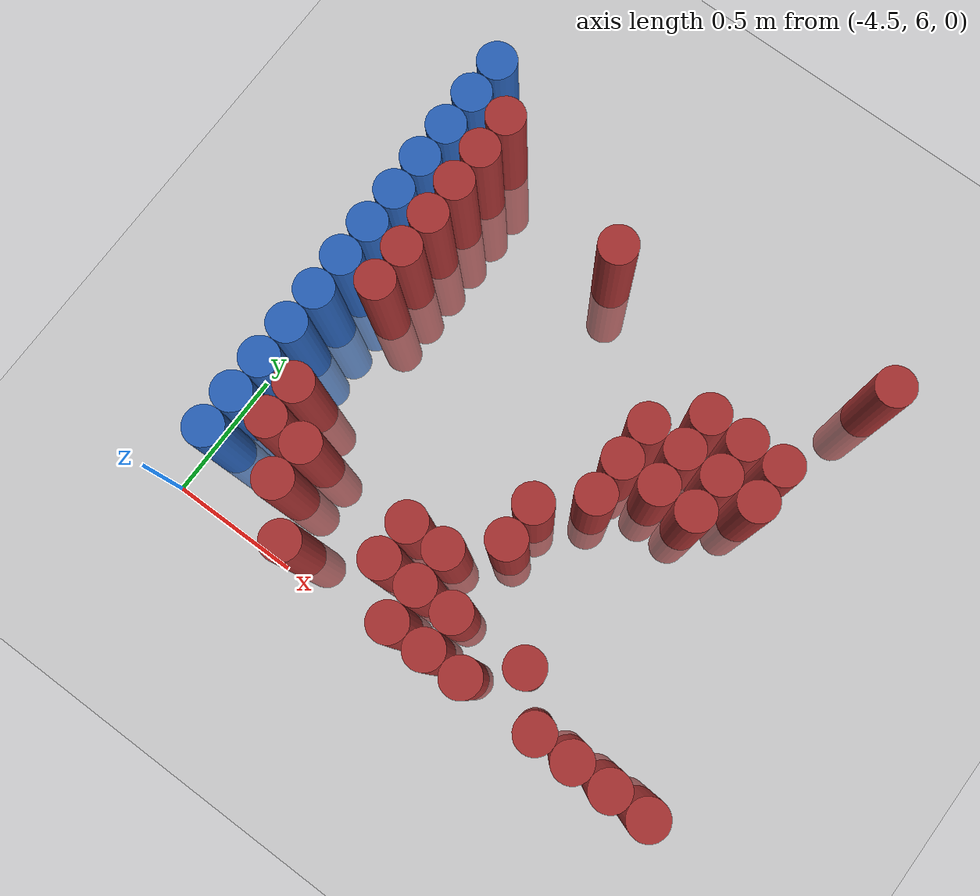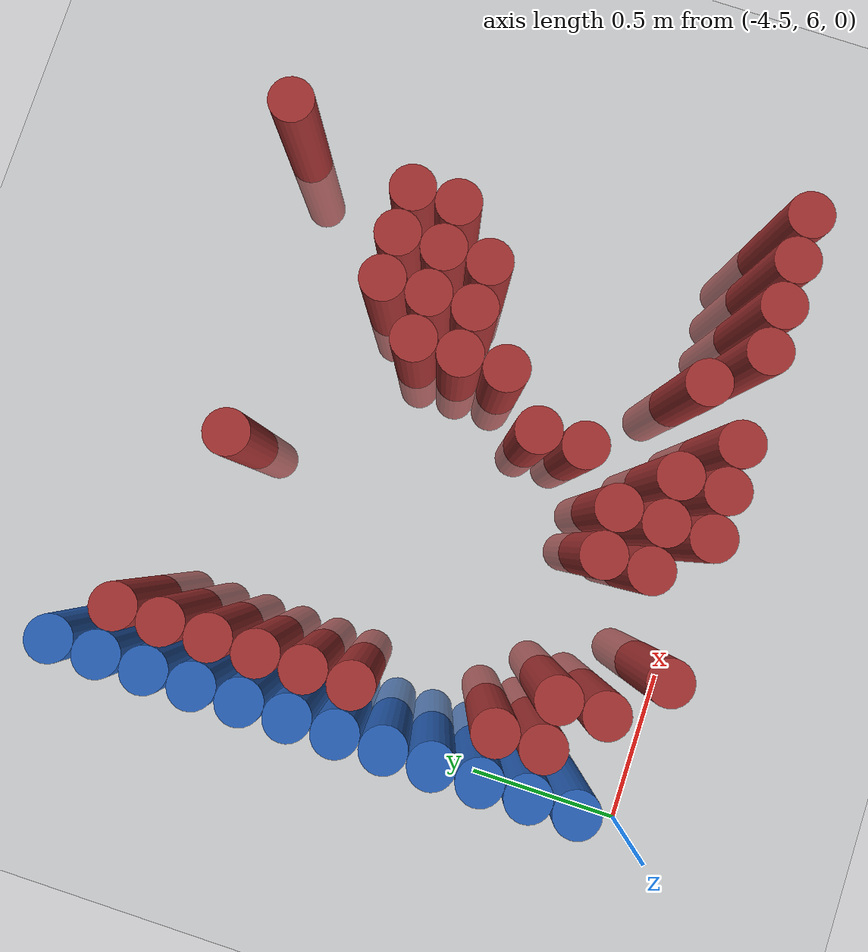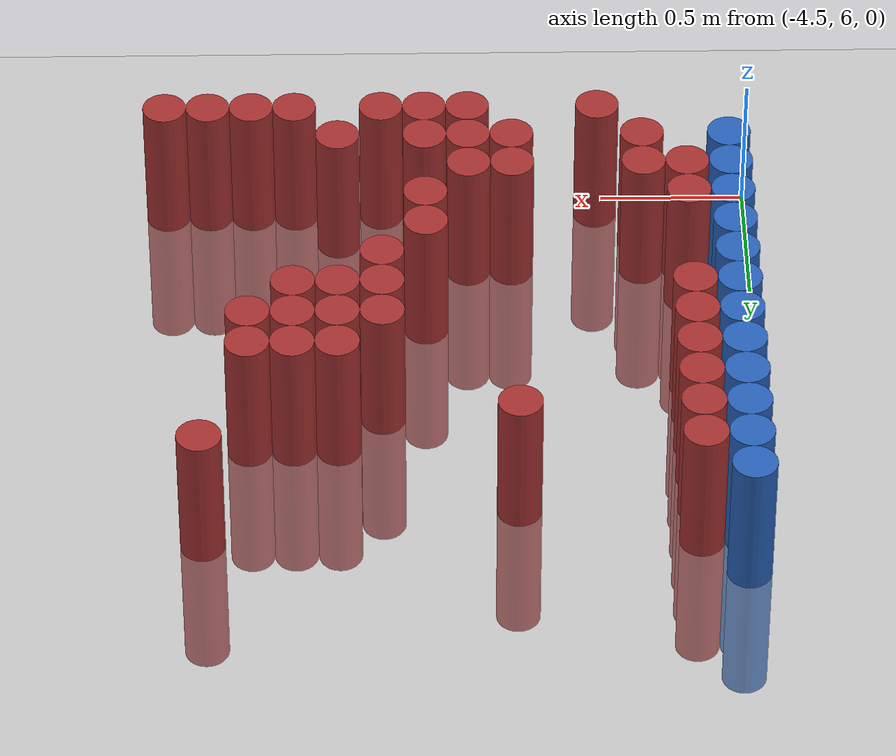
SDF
<sdf version="1.6">
 <world name="default">
  <model name="ground_plane">
   <static>1</static>
   <link name="link">
    <collision name="collision">
     <geometry><plane><normal>0 0 1</normal><size>100 100</size></plane></geometry>
     <surface><friction><ode><mu>100</mu><mu2>50</mu2></ode></friction></surface>
    </collision>
    <visual name="visual">
     <cast_shadows>0</cast_shadows>
     <geometry><plane><normal>0 0 1</normal><size>100 100</size></plane></geometry>
     <material>
      <script><uri>file://media/materials/scripts/gazebo.material</uri><name>Gazebo/Grey</name></script>
     </material>
    </visual>
   </link>
  </model>
  <model name="unit_cylinder_103">
   <static>1</static>
   <pose>-4.425000 6.225000 0.000000 0.000000 0.000000 0.000000</pose>
   <link name="link">
    <inertial>
     <mass>1</mass>
     <inertia><ixx>0.145833</ixx><ixy>0</ixy><ixz>0</ixz><iyy>0.145833</iyy><iyz>0</iyz><izz>0.125</izz></inertia>
    </inertial>
    <collision name="collision">
     <geometry><cylinder><radius>0.075000</radius><length>1</length></cylinder></geometry>
    </collision>
    <visual name="visual">
     <geometry><cylinder><radius>0.075000</radius><length>1</length></cylinder></geometry>
     <material>
      <ambient>0.152000 0.379000 0.720000 1</ambient>
      <diffuse>0.152000 0.379000 0.720000 1</diffuse>
     </material>
     <material>
      <script><name>Gazebo/Grey</name><uri>file://media/materials/scripts/gazebo.material</uri></script>
     </material>
    </visual>
   </link>
  </model>
  <model name="unit_cylinder_104">
   <static>1</static>
   <pose>-4.425000 6.375000 0.000000 0.000000 0.000000 0.000000</pose>
   <link name="link">
    <inertial>
     <mass>1</mass>
     <inertia><ixx>0.145833</ixx><ixy>0</ixy><ixz>0</ixz><iyy>0.145833</iyy><iyz>0</iyz><izz>0.125</izz></inertia>
    </inertial>
    <collision name="collision">
     <geometry><cylinder><radius>0.075000</radius><length>1</length></cylinder></geometry>
    </collision>
    <visual name="visual">
     <geometry><cylinder><radius>0.075000</radius><length>1</length></cylinder></geometry>
     <material>
      <ambient>0.152000 0.379000 0.720000 1</ambient>
      <diffuse>0.152000 0.379000 0.720000 1</diffuse>
     </material>
     <material>
      <script><name>Gazebo/Grey</name><uri>file://media/materials/scripts/gazebo.material</uri></script>
     </material>
    </visual>
   </link>
  </model>
  <model name="unit_cylinder_105">
   <static>1</static>
   <pose>-4.425000 6.525000 0.000000 0.000000 0.000000 0.000000</pose>
   <link name="link">
    <inertial>
     <mass>1</mass>
     <inertia><ixx>0.145833</ixx><ixy>0</ixy><ixz>0</ixz><iyy>0.145833</iyy><iyz>0</iyz><izz>0.125</izz></inertia>
    </inertial>
    <collision name="collision">
     <geometry><cylinder><radius>0.075000</radius><length>1</length></cylinder></geometry>
    </collision>
    <visual name="visual">
     <geometry><cylinder><radius>0.075000</radius><length>1</length></cylinder></geometry>
     <material>
      <ambient>0.152000 0.379000 0.720000 1</ambient>
      <diffuse>0.152000 0.379000 0.720000 1</diffuse>
     </material>
     <material>
      <script><name>Gazebo/Grey</name><uri>file://media/materials/scripts/gazebo.material</uri></script>
     </material>
    </visual>
   </link>
  </model>
  <model name="unit_cylinder_106">
   <static>1</static>
   <pose>-4.425000 6.675000 0.000000 0.000000 0.000000 0.000000</pose>
   <link name="link">
    <inertial>
     <mass>1</mass>
     <inertia><ixx>0.145833</ixx><ixy>0</ixy><ixz>0</ixz><iyy>0.145833</iyy><iyz>0</iyz><izz>0.125</izz></inertia>
    </inertial>
    <collision name="collision">
     <geometry><cylinder><radius>0.075000</radius><length>1</length></cylinder></geometry>
    </collision>
    <visual name="visual">
     <geometry><cylinder><radius>0.075000</radius><length>1</length></cylinder></geometry>
     <material>
      <ambient>0.152000 0.379000 0.720000 1</ambient>
      <diffuse>0.152000 0.379000 0.720000 1</diffuse>
     </material>
     <material>
      <script><name>Gazebo/Grey</name><uri>file://media/materials/scripts/gazebo.material</uri></script>
     </material>
    </visual>
   </link>
  </model>
  <model name="unit_cylinder_107">
   <static>1</static>
   <pose>-4.425000 6.825000 0.000000 0.000000 0.000000 0.000000</pose>
   <link name="link">
    <inertial>
     <mass>1</mass>
     <inertia><ixx>0.145833</ixx><ixy>0</ixy><ixz>0</ixz><iyy>0.145833</iyy><iyz>0</iyz><izz>0.125</izz></inertia>
    </inertial>
    <collision name="collision">
     <geometry><cylinder><radius>0.075000</radius><length>1</length></cylinder></geometry>
    </collision>
    <visual name="visual">
     <geometry><cylinder><radius>0.075000</radius><length>1</length></cylinder></geometry>
     <material>
      <ambient>0.152000 0.379000 0.720000 1</ambient>
      <diffuse>0.152000 0.379000 0.720000 1</diffuse>
     </material>
     <material>
      <script><name>Gazebo/Grey</name><uri>file://media/materials/scripts/gazebo.material</uri></script>
     </material>
    </visual>
   </link>
  </model>
  <model name="unit_cylinder_108">
   <static>1</static>
   <pose>-4.425000 6.975000 0.000000 0.000000 0.000000 0.000000</pose>
   <link name="link">
    <inertial>
     <mass>1</mass>
     <inertia><ixx>0.145833</ixx><ixy>0</ixy><ixz>0</ixz><iyy>0.145833</iyy><iyz>0</iyz><izz>0.125</izz></inertia>
    </inertial>
    <collision name="collision">
     <geometry><cylinder><radius>0.075000</radius><length>1</length></cylinder></geometry>
    </collision>
    <visual name="visual">
     <geometry><cylinder><radius>0.075000</radius><length>1</length></cylinder></geometry>
     <material>
      <ambient>0.152000 0.379000 0.720000 1</ambient>
      <diffuse>0.152000 0.379000 0.720000 1</diffuse>
     </material>
     <material>
      <script><name>Gazebo/Grey</name><uri>file://media/materials/scripts/gazebo.material</uri></script>
     </material>
    </visual>
   </link>
  </model>
  <model name="unit_cylinder_109">
   <static>1</static>
   <pose>-4.425000 7.125000 0.000000 0.000000 0.000000 0.000000</pose>
   <link name="link">
    <inertial>
     <mass>1</mass>
     <inertia><ixx>0.145833</ixx><ixy>0</ixy><ixz>0</ixz><iyy>0.145833</iyy><iyz>0</iyz><izz>0.125</izz></inertia>
    </inertial>
    <collision name="collision">
     <geometry><cylinder><radius>0.075000</radius><length>1</length></cylinder></geometry>
    </collision>
    <visual name="visual">
     <geometry><cylinder><radius>0.075000</radius><length>1</length></cylinder></geometry>
     <material>
      <ambient>0.152000 0.379000 0.720000 1</ambient>
      <diffuse>0.152000 0.379000 0.720000 1</diffuse>
     </material>
     <material>
      <script><name>Gazebo/Grey</name><uri>file://media/materials/scripts/gazebo.material</uri></script>
     </material>
    </visual>
   </link>
  </model>
  <model name="unit_cylinder_110">
   <static>1</static>
   <pose>-4.425000 7.275000 0.000000 0.000000 0.000000 0.000000</pose>
   <link name="link">
    <inertial>
     <mass>1</mass>
     <inertia><ixx>0.145833</ixx><ixy>0</ixy><ixz>0</ixz><iyy>0.145833</iyy><iyz>0</iyz><izz>0.125</izz></inertia>
    </inertial>
    <collision name="collision">
     <geometry><cylinder><radius>0.075000</radius><length>1</length></cylinder></geometry>
    </collision>
    <visual name="visual">
     <geometry><cylinder><radius>0.075000</radius><length>1</length></cylinder></geometry>
     <material>
      <ambient>0.152000 0.379000 0.720000 1</ambient>
      <diffuse>0.152000 0.379000 0.720000 1</diffuse>
     </material>
     <material>
      <script><name>Gazebo/Grey</name><uri>file://media/materials/scripts/gazebo.material</uri></script>
     </material>
    </visual>
   </link>
  </model>
  <model name="unit_cylinder_111">
   <static>1</static>
   <pose>-4.425000 7.425000 0.000000 0.000000 0.000000 0.000000</pose>
   <link name="link">
    <inertial>
     <mass>1</mass>
     <inertia><ixx>0.145833</ixx><ixy>0</ixy><ixz>0</ixz><iyy>0.145833</iyy><iyz>0</iyz><izz>0.125</izz></inertia>
    </inertial>
    <collision name="collision">
     <geometry><cylinder><radius>0.075000</radius><length>1</length></cylinder></geometry>
    </collision>
    <visual name="visual">
     <geometry><cylinder><radius>0.075000</radius><length>1</length></cylinder></geometry>
     <material>
      <ambient>0.152000 0.379000 0.720000 1</ambient>
      <diffuse>0.152000 0.379000 0.720000 1</diffuse>
     </material>
     <material>
      <script><name>Gazebo/Grey</name><uri>file://media/materials/scripts/gazebo.material</uri></script>
     </material>
    </visual>
   </link>
  </model>
  <model name="unit_cylinder_112">
   <static>1</static>
   <pose>-4.425000 7.575000 0.000000 0.000000 0.000000 0.000000</pose>
   <link name="link">
    <inertial>
     <mass>1</mass>
     <inertia><ixx>0.145833</ixx><ixy>0</ixy><ixz>0</ixz><iyy>0.145833</iyy><iyz>0</iyz><izz>0.125</izz></inertia>
    </inertial>
    <collision name="collision">
     <geometry><cylinder><radius>0.075000</radius><length>1</length></cylinder></geometry>
    </collision>
    <visual name="visual">
     <geometry><cylinder><radius>0.075000</radius><length>1</length></cylinder></geometry>
     <material>
      <ambient>0.152000 0.379000 0.720000 1</ambient>
      <diffuse>0.152000 0.379000 0.720000 1</diffuse>
     </material>
     <material>
      <script><name>Gazebo/Grey</name><uri>file://media/materials/scripts/gazebo.material</uri></script>
     </material>
    </visual>
   </link>
  </model>
  <model name="unit_cylinder_113">
   <static>1</static>
   <pose>-4.425000 7.725000 0.000000 0.000000 0.000000 0.000000</pose>
   <link name="link">
    <inertial>
     <mass>1</mass>
     <inertia><ixx>0.145833</ixx><ixy>0</ixy><ixz>0</ixz><iyy>0.145833</iyy><iyz>0</iyz><izz>0.125</izz></inertia>
    </inertial>
    <collision name="collision">
     <geometry><cylinder><radius>0.075000</radius><length>1</length></cylinder></geometry>
    </collision>
    <visual name="visual">
     <geometry><cylinder><radius>0.075000</radius><length>1</length></cylinder></geometry>
     <material>
      <ambient>0.152000 0.379000 0.720000 1</ambient>
      <diffuse>0.152000 0.379000 0.720000 1</diffuse>
     </material>
     <material>
      <script><name>Gazebo/Grey</name><uri>file://media/materials/scripts/gazebo.material</uri></script>
     </material>
    </visual>
   </link>
  </model>
  <model name="unit_cylinder_114">
   <static>1</static>
   <pose>-4.425000 7.875000 0.000000 0.000000 0.000000 0.000000</pose>
   <link name="link">
    <inertial>
     <mass>1</mass>
     <inertia><ixx>0.145833</ixx><ixy>0</ixy><ixz>0</ixz><iyy>0.145833</iyy><iyz>0</iyz><izz>0.125</izz></inertia>
    </inertial>
    <collision name="collision">
     <geometry><cylinder><radius>0.075000</radius><length>1</length></cylinder></geometry>
    </collision>
    <visual name="visual">
     <geometry><cylinder><radius>0.075000</radius><length>1</length></cylinder></geometry>
     <material>
      <ambient>0.152000 0.379000 0.720000 1</ambient>
      <diffuse>0.152000 0.379000 0.720000 1</diffuse>
     </material>
     <material>
      <script><name>Gazebo/Grey</name><uri>file://media/materials/scripts/gazebo.material</uri></script>
     </material>
    </visual>
   </link>
  </model>
  <model name="unit_cylinder_127">
   <static>1</static>
   <pose>-4.275000 6.375000 0.000000 0.000000 0.000000 0.000000</pose>
   <link name="link">
    <inertial>
     <mass>1</mass>
     <inertia><ixx>0.145833</ixx><ixy>0</ixy><ixz>0</ixz><iyy>0.145833</iyy><iyz>0</iyz><izz>0.125</izz></inertia>
    </inertial>
    <collision name="collision">
     <geometry><cylinder><radius>0.075000</radius><length>1</length></cylinder></geometry>
    </collision>
    <visual name="visual">
     <geometry><cylinder><radius>0.075000</radius><length>1</length></cylinder></geometry>
     <material>
      <ambient>0.648000 0.192000 0.192000 1</ambient>
      <diffuse>0.648000 0.192000 0.192000 1</diffuse>
     </material>
     <material>
      <script><name>Gazebo/Grey</name><uri>file://media/materials/scripts/gazebo.material</uri></script>
     </material>
    </visual>
   </link>
  </model>
  <model name="unit_cylinder_128">
   <static>1</static>
   <pose>-4.275000 6.525000 0.000000 0.000000 0.000000 0.000000</pose>
   <link name="link">
    <inertial>
     <mass>1</mass>
     <inertia><ixx>0.145833</ixx><ixy>0</ixy><ixz>0</ixz><iyy>0.145833</iyy><iyz>0</iyz><izz>0.125</izz></inertia>
    </inertial>
    <collision name="collision">
     <geometry><cylinder><radius>0.075000</radius><length>1</length></cylinder></geometry>
    </collision>
    <visual name="visual">
     <geometry><cylinder><radius>0.075000</radius><length>1</length></cylinder></geometry>
     <material>
      <ambient>0.648000 0.192000 0.192000 1</ambient>
      <diffuse>0.648000 0.192000 0.192000 1</diffuse>
     </material>
     <material>
      <script><name>Gazebo/Grey</name><uri>file://media/materials/scripts/gazebo.material</uri></script>
     </material>
    </visual>
   </link>
  </model>
  <model name="unit_cylinder_129">
   <static>1</static>
   <pose>-4.275000 6.975000 0.000000 0.000000 0.000000 0.000000</pose>
   <link name="link">
    <inertial>
     <mass>1</mass>
     <inertia><ixx>0.145833</ixx><ixy>0</ixy><ixz>0</ixz><iyy>0.145833</iyy><iyz>0</iyz><izz>0.125</izz></inertia>
    </inertial>
    <collision name="collision">
     <geometry><cylinder><radius>0.075000</radius><length>1</length></cylinder></geometry>
    </collision>
    <visual name="visual">
     <geometry><cylinder><radius>0.075000</radius><length>1</length></cylinder></geometry>
     <material>
      <ambient>0.648000 0.192000 0.192000 1</ambient>
      <diffuse>0.648000 0.192000 0.192000 1</diffuse>
     </material>
     <material>
      <script><name>Gazebo/Grey</name><uri>file://media/materials/scripts/gazebo.material</uri></script>
     </material>
    </visual>
   </link>
  </model>
  <model name="unit_cylinder_130">
   <static>1</static>
   <pose>-4.275000 7.125000 0.000000 0.000000 0.000000 0.000000</pose>
   <link name="link">
    <inertial>
     <mass>1</mass>
     <inertia><ixx>0.145833</ixx><ixy>0</ixy><ixz>0</ixz><iyy>0.145833</iyy><iyz>0</iyz><izz>0.125</izz></inertia>
    </inertial>
    <collision name="collision">
     <geometry><cylinder><radius>0.075000</radius><length>1</length></cylinder></geometry>
    </collision>
    <visual name="visual">
     <geometry><cylinder><radius>0.075000</radius><length>1</length></cylinder></geometry>
     <material>
      <ambient>0.648000 0.192000 0.192000 1</ambient>
      <diffuse>0.648000 0.192000 0.192000 1</diffuse>
     </material>
     <material>
      <script><name>Gazebo/Grey</name><uri>file://media/materials/scripts/gazebo.material</uri></script>
     </material>
    </visual>
   </link>
  </model>
  <model name="unit_cylinder_131">
   <static>1</static>
   <pose>-4.275000 7.275000 0.000000 0.000000 0.000000 0.000000</pose>
   <link name="link">
    <inertial>
     <mass>1</mass>
     <inertia><ixx>0.145833</ixx><ixy>0</ixy><ixz>0</ixz><iyy>0.145833</iyy><iyz>0</iyz><izz>0.125</izz></inertia>
    </inertial>
    <collision name="collision">
     <geometry><cylinder><radius>0.075000</radius><length>1</length></cylinder></geometry>
    </collision>
    <visual name="visual">
     <geometry><cylinder><radius>0.075000</radius><length>1</length></cylinder></geometry>
     <material>
      <ambient>0.648000 0.192000 0.192000 1</ambient>
      <diffuse>0.648000 0.192000 0.192000 1</diffuse>
     </material>
     <material>
      <script><name>Gazebo/Grey</name><uri>file://media/materials/scripts/gazebo.material</uri></script>
     </material>
    </visual>
   </link>
  </model>
  <model name="unit_cylinder_132">
   <static>1</static>
   <pose>-4.275000 7.425000 0.000000 0.000000 0.000000 0.000000</pose>
   <link name="link">
    <inertial>
     <mass>1</mass>
     <inertia><ixx>0.145833</ixx><ixy>0</ixy><ixz>0</ixz><iyy>0.145833</iyy><iyz>0</iyz><izz>0.125</izz></inertia>
    </inertial>
    <collision name="collision">
     <geometry><cylinder><radius>0.075000</radius><length>1</length></cylinder></geometry>
    </collision>
    <visual name="visual">
     <geometry><cylinder><radius>0.075000</radius><length>1</length></cylinder></geometry>
     <material>
      <ambient>0.648000 0.192000 0.192000 1</ambient>
      <diffuse>0.648000 0.192000 0.192000 1</diffuse>
     </material>
     <material>
      <script><name>Gazebo/Grey</name><uri>file://media/materials/scripts/gazebo.material</uri></script>
     </material>
    </visual>
   </link>
  </model>
  <model name="unit_cylinder_133">
   <static>1</static>
   <pose>-4.275000 7.575000 0.000000 0.000000 0.000000 0.000000</pose>
   <link name="link">
    <inertial>
     <mass>1</mass>
     <inertia><ixx>0.145833</ixx><ixy>0</ixy><ixz>0</ixz><iyy>0.145833</iyy><iyz>0</iyz><izz>0.125</izz></inertia>
    </inertial>
    <collision name="collision">
     <geometry><cylinder><radius>0.075000</radius><length>1</length></cylinder></geometry>
    </collision>
    <visual name="visual">
     <geometry><cylinder><radius>0.075000</radius><length>1</length></cylinder></geometry>
     <material>
      <ambient>0.648000 0.192000 0.192000 1</ambient>
      <diffuse>0.648000 0.192000 0.192000 1</diffuse>
     </material>
     <material>
      <script><name>Gazebo/Grey</name><uri>file://media/materials/scripts/gazebo.material</uri></script>
     </material>
    </visual>
   </link>
  </model>
  <model name="unit_cylinder_134">
   <static>1</static>
   <pose>-4.275000 7.725000 0.000000 0.000000 0.000000 0.000000</pose>
   <link name="link">
    <inertial>
     <mass>1</mass>
     <inertia><ixx>0.145833</ixx><ixy>0</ixy><ixz>0</ixz><iyy>0.145833</iyy><iyz>0</iyz><izz>0.125</izz></inertia>
    </inertial>
    <collision name="collision">
     <geometry><cylinder><radius>0.075000</radius><length>1</length></cylinder></geometry>
    </collision>
    <visual name="visual">
     <geometry><cylinder><radius>0.075000</radius><length>1</length></cylinder></geometry>
     <material>
      <ambient>0.648000 0.192000 0.192000 1</ambient>
      <diffuse>0.648000 0.192000 0.192000 1</diffuse>
     </material>
     <material>
      <script><name>Gazebo/Grey</name><uri>file://media/materials/scripts/gazebo.material</uri></script>
     </material>
    </visual>
   </link>
  </model>
  <model name="unit_cylinder_144">
   <static>1</static>
   <pose>-4.125000 6.225000 0.000000 0.000000 0.000000 0.000000</pose>
   <link name="link">
    <inertial>
     <mass>1</mass>
     <inertia><ixx>0.145833</ixx><ixy>0</ixy><ixz>0</ixz><iyy>0.145833</iyy><iyz>0</iyz><izz>0.125</izz></inertia>
    </inertial>
    <collision name="collision">
     <geometry><cylinder><radius>0.075000</radius><length>1</length></cylinder></geometry>
    </collision>
    <visual name="visual">
     <geometry><cylinder><radius>0.075000</radius><length>1</length></cylinder></geometry>
     <material>
      <ambient>0.648000 0.192000 0.192000 1</ambient>
      <diffuse>0.648000 0.192000 0.192000 1</diffuse>
     </material>
     <material>
      <script><name>Gazebo/Grey</name><uri>file://media/materials/scripts/gazebo.material</uri></script>
     </material>
    </visual>
   </link>
  </model>
  <model name="unit_cylinder_145">
   <static>1</static>
   <pose>-4.125000 6.375000 0.000000 0.000000 0.000000 0.000000</pose>
   <link name="link">
    <inertial>
     <mass>1</mass>
     <inertia><ixx>0.145833</ixx><ixy>0</ixy><ixz>0</ixz><iyy>0.145833</iyy><iyz>0</iyz><izz>0.125</izz></inertia>
    </inertial>
    <collision name="collision">
     <geometry><cylinder><radius>0.075000</radius><length>1</length></cylinder></geometry>
    </collision>
    <visual name="visual">
     <geometry><cylinder><radius>0.075000</radius><length>1</length></cylinder></geometry>
     <material>
      <ambient>0.648000 0.192000 0.192000 1</ambient>
      <diffuse>0.648000 0.192000 0.192000 1</diffuse>
     </material>
     <material>
      <script><name>Gazebo/Grey</name><uri>file://media/materials/scripts/gazebo.material</uri></script>
     </material>
    </visual>
   </link>
  </model>
  <model name="unit_cylinder_153">
   <static>1</static>
   <pose>-3.975000 6.075000 0.000000 0.000000 0.000000 0.000000</pose>
   <link name="link">
    <inertial>
     <mass>1</mass>
     <inertia><ixx>0.145833</ixx><ixy>0</ixy><ixz>0</ixz><iyy>0.145833</iyy><iyz>0</iyz><izz>0.125</izz></inertia>
    </inertial>
    <collision name="collision">
     <geometry><cylinder><radius>0.075000</radius><length>1</length></cylinder></geometry>
    </collision>
    <visual name="visual">
     <geometry><cylinder><radius>0.075000</radius><length>1</length></cylinder></geometry>
     <material>
      <ambient>0.648000 0.192000 0.192000 1</ambient>
      <diffuse>0.648000 0.192000 0.192000 1</diffuse>
     </material>
     <material>
      <script><name>Gazebo/Grey</name><uri>file://media/materials/scripts/gazebo.material</uri></script>
     </material>
    </visual>
   </link>
  </model>
  <model name="unit_cylinder_163">
   <static>1</static>
   <pose>-3.675000 6.225000 0.000000 0.000000 0.000000 0.000000</pose>
   <link name="link">
    <inertial>
     <mass>1</mass>
     <inertia><ixx>0.145833</ixx><ixy>0</ixy><ixz>0</ixz><iyy>0.145833</iyy><iyz>0</iyz><izz>0.125</izz></inertia>
    </inertial>
    <collision name="collision">
     <geometry><cylinder><radius>0.075000</radius><length>1</length></cylinder></geometry>
    </collision>
    <visual name="visual">
     <geometry><cylinder><radius>0.075000</radius><length>1</length></cylinder></geometry>
     <material>
      <ambient>0.648000 0.192000 0.192000 1</ambient>
      <diffuse>0.648000 0.192000 0.192000 1</diffuse>
     </material>
     <material>
      <script><name>Gazebo/Grey</name><uri>file://media/materials/scripts/gazebo.material</uri></script>
     </material>
    </visual>
   </link>
  </model>
  <model name="unit_cylinder_164">
   <static>1</static>
   <pose>-3.675000 6.375000 0.000000 0.000000 0.000000 0.000000</pose>
   <link name="link">
    <inertial>
     <mass>1</mass>
     <inertia><ixx>0.145833</ixx><ixy>0</ixy><ixz>0</ixz><iyy>0.145833</iyy><iyz>0</iyz><izz>0.125</izz></inertia>
    </inertial>
    <collision name="collision">
     <geometry><cylinder><radius>0.075000</radius><length>1</length></cylinder></geometry>
    </collision>
    <visual name="visual">
     <geometry><cylinder><radius>0.075000</radius><length>1</length></cylinder></geometry>
     <material>
      <ambient>0.648000 0.192000 0.192000 1</ambient>
      <diffuse>0.648000 0.192000 0.192000 1</diffuse>
     </material>
     <material>
      <script><name>Gazebo/Grey</name><uri>file://media/materials/scripts/gazebo.material</uri></script>
     </material>
    </visual>
   </link>
  </model>
  <model name="unit_cylinder_165">
   <static>1</static>
   <pose>-3.675000 7.575000 0.000000 0.000000 0.000000 0.000000</pose>
   <link name="link">
    <inertial>
     <mass>1</mass>
     <inertia><ixx>0.145833</ixx><ixy>0</ixy><ixz>0</ixz><iyy>0.145833</iyy><iyz>0</iyz><izz>0.125</izz></inertia>
    </inertial>
    <collision name="collision">
     <geometry><cylinder><radius>0.075000</radius><length>1</length></cylinder></geometry>
    </collision>
    <visual name="visual">
     <geometry><cylinder><radius>0.075000</radius><length>1</length></cylinder></geometry>
     <material>
      <ambient>0.648000 0.192000 0.192000 1</ambient>
      <diffuse>0.648000 0.192000 0.192000 1</diffuse>
     </material>
     <material>
      <script><name>Gazebo/Grey</name><uri>file://media/materials/scripts/gazebo.material</uri></script>
     </material>
    </visual>
   </link>
  </model>
  <model name="unit_cylinder_175">
   <static>1</static>
   <pose>-3.525000 6.075000 0.000000 0.000000 0.000000 0.000000</pose>
   <link name="link">
    <inertial>
     <mass>1</mass>
     <inertia><ixx>0.145833</ixx><ixy>0</ixy><ixz>0</ixz><iyy>0.145833</iyy><iyz>0</iyz><izz>0.125</izz></inertia>
    </inertial>
    <collision name="collision">
     <geometry><cylinder><radius>0.075000</radius><length>1</length></cylinder></geometry>
    </collision>
    <visual name="visual">
     <geometry><cylinder><radius>0.075000</radius><length>1</length></cylinder></geometry>
     <material>
      <ambient>0.648000 0.192000 0.192000 1</ambient>
      <diffuse>0.648000 0.192000 0.192000 1</diffuse>
     </material>
     <material>
      <script><name>Gazebo/Grey</name><uri>file://media/materials/scripts/gazebo.material</uri></script>
     </material>
    </visual>
   </link>
  </model>
  <model name="unit_cylinder_176">
   <static>1</static>
   <pose>-3.525000 6.225000 0.000000 0.000000 0.000000 0.000000</pose>
   <link name="link">
    <inertial>
     <mass>1</mass>
     <inertia><ixx>0.145833</ixx><ixy>0</ixy><ixz>0</ixz><iyy>0.145833</iyy><iyz>0</iyz><izz>0.125</izz></inertia>
    </inertial>
    <collision name="collision">
     <geometry><cylinder><radius>0.075000</radius><length>1</length></cylinder></geometry>
    </collision>
    <visual name="visual">
     <geometry><cylinder><radius>0.075000</radius><length>1</length></cylinder></geometry>
     <material>
      <ambient>0.648000 0.192000 0.192000 1</ambient>
      <diffuse>0.648000 0.192000 0.192000 1</diffuse>
     </material>
     <material>
      <script><name>Gazebo/Grey</name><uri>file://media/materials/scripts/gazebo.material</uri></script>
     </material>
    </visual>
   </link>
  </model>
  <model name="unit_cylinder_177">
   <static>1</static>
   <pose>-3.525000 6.375000 0.000000 0.000000 0.000000 0.000000</pose>
   <link name="link">
    <inertial>
     <mass>1</mass>
     <inertia><ixx>0.145833</ixx><ixy>0</ixy><ixz>0</ixz><iyy>0.145833</iyy><iyz>0</iyz><izz>0.125</izz></inertia>
    </inertial>
    <collision name="collision">
     <geometry><cylinder><radius>0.075000</radius><length>1</length></cylinder></geometry>
    </collision>
    <visual name="visual">
     <geometry><cylinder><radius>0.075000</radius><length>1</length></cylinder></geometry>
     <material>
      <ambient>0.648000 0.192000 0.192000 1</ambient>
      <diffuse>0.648000 0.192000 0.192000 1</diffuse>
     </material>
     <material>
      <script><name>Gazebo/Grey</name><uri>file://media/materials/scripts/gazebo.material</uri></script>
     </material>
    </visual>
   </link>
  </model>
  <model name="unit_cylinder_184">
   <static>1</static>
   <pose>-3.375000 6.075000 0.000000 0.000000 0.000000 0.000000</pose>
   <link name="link">
    <inertial>
     <mass>1</mass>
     <inertia><ixx>0.145833</ixx><ixy>0</ixy><ixz>0</ixz><iyy>0.145833</iyy><iyz>0</iyz><izz>0.125</izz></inertia>
    </inertial>
    <collision name="collision">
     <geometry><cylinder><radius>0.075000</radius><length>1</length></cylinder></geometry>
    </collision>
    <visual name="visual">
     <geometry><cylinder><radius>0.075000</radius><length>1</length></cylinder></geometry>
     <material>
      <ambient>0.648000 0.192000 0.192000 1</ambient>
      <diffuse>0.648000 0.192000 0.192000 1</diffuse>
     </material>
     <material>
      <script><name>Gazebo/Grey</name><uri>file://media/materials/scripts/gazebo.material</uri></script>
     </material>
    </visual>
   </link>
  </model>
  <model name="unit_cylinder_185">
   <static>1</static>
   <pose>-3.375000 6.225000 0.000000 0.000000 0.000000 0.000000</pose>
   <link name="link">
    <inertial>
     <mass>1</mass>
     <inertia><ixx>0.145833</ixx><ixy>0</ixy><ixz>0</ixz><iyy>0.145833</iyy><iyz>0</iyz><izz>0.125</izz></inertia>
    </inertial>
    <collision name="collision">
     <geometry><cylinder><radius>0.075000</radius><length>1</length></cylinder></geometry>
    </collision>
    <visual name="visual">
     <geometry><cylinder><radius>0.075000</radius><length>1</length></cylinder></geometry>
     <material>
      <ambient>0.648000 0.192000 0.192000 1</ambient>
      <diffuse>0.648000 0.192000 0.192000 1</diffuse>
     </material>
     <material>
      <script><name>Gazebo/Grey</name><uri>file://media/materials/scripts/gazebo.material</uri></script>
     </material>
    </visual>
   </link>
  </model>
  <model name="unit_cylinder_186">
   <static>1</static>
   <pose>-3.375000 6.525000 0.000000 0.000000 0.000000 0.000000</pose>
   <link name="link">
    <inertial>
     <mass>1</mass>
     <inertia><ixx>0.145833</ixx><ixy>0</ixy><ixz>0</ixz><iyy>0.145833</iyy><iyz>0</iyz><izz>0.125</izz></inertia>
    </inertial>
    <collision name="collision">
     <geometry><cylinder><radius>0.075000</radius><length>1</length></cylinder></geometry>
    </collision>
    <visual name="visual">
     <geometry><cylinder><radius>0.075000</radius><length>1</length></cylinder></geometry>
     <material>
      <ambient>0.648000 0.192000 0.192000 1</ambient>
      <diffuse>0.648000 0.192000 0.192000 1</diffuse>
     </material>
     <material>
      <script><name>Gazebo/Grey</name><uri>file://media/materials/scripts/gazebo.material</uri></script>
     </material>
    </visual>
   </link>
  </model>
  <model name="unit_cylinder_187">
   <static>1</static>
   <pose>-3.375000 6.675000 0.000000 0.000000 0.000000 0.000000</pose>
   <link name="link">
    <inertial>
     <mass>1</mass>
     <inertia><ixx>0.145833</ixx><ixy>0</ixy><ixz>0</ixz><iyy>0.145833</iyy><iyz>0</iyz><izz>0.125</izz></inertia>
    </inertial>
    <collision name="collision">
     <geometry><cylinder><radius>0.075000</radius><length>1</length></cylinder></geometry>
    </collision>
    <visual name="visual">
     <geometry><cylinder><radius>0.075000</radius><length>1</length></cylinder></geometry>
     <material>
      <ambient>0.648000 0.192000 0.192000 1</ambient>
      <diffuse>0.648000 0.192000 0.192000 1</diffuse>
     </material>
     <material>
      <script><name>Gazebo/Grey</name><uri>file://media/materials/scripts/gazebo.material</uri></script>
     </material>
    </visual>
   </link>
  </model>
  <model name="unit_cylinder_195">
   <static>1</static>
   <pose>-3.225000 6.075000 0.000000 0.000000 0.000000 0.000000</pose>
   <link name="link">
    <inertial>
     <mass>1</mass>
     <inertia><ixx>0.145833</ixx><ixy>0</ixy><ixz>0</ixz><iyy>0.145833</iyy><iyz>0</iyz><izz>0.125</izz></inertia>
    </inertial>
    <collision name="collision">
     <geometry><cylinder><radius>0.075000</radius><length>1</length></cylinder></geometry>
    </collision>
    <visual name="visual">
     <geometry><cylinder><radius>0.075000</radius><length>1</length></cylinder></geometry>
     <material>
      <ambient>0.648000 0.192000 0.192000 1</ambient>
      <diffuse>0.648000 0.192000 0.192000 1</diffuse>
     </material>
     <material>
      <script><name>Gazebo/Grey</name><uri>file://media/materials/scripts/gazebo.material</uri></script>
     </material>
    </visual>
   </link>
  </model>
  <model name="unit_cylinder_196">
   <static>1</static>
   <pose>-3.225000 6.825000 0.000000 0.000000 0.000000 0.000000</pose>
   <link name="link">
    <inertial>
     <mass>1</mass>
     <inertia><ixx>0.145833</ixx><ixy>0</ixy><ixz>0</ixz><iyy>0.145833</iyy><iyz>0</iyz><izz>0.125</izz></inertia>
    </inertial>
    <collision name="collision">
     <geometry><cylinder><radius>0.075000</radius><length>1</length></cylinder></geometry>
    </collision>
    <visual name="visual">
     <geometry><cylinder><radius>0.075000</radius><length>1</length></cylinder></geometry>
     <material>
      <ambient>0.648000 0.192000 0.192000 1</ambient>
      <diffuse>0.648000 0.192000 0.192000 1</diffuse>
     </material>
     <material>
      <script><name>Gazebo/Grey</name><uri>file://media/materials/scripts/gazebo.material</uri></script>
     </material>
    </visual>
   </link>
  </model>
  <model name="unit_cylinder_197">
   <static>1</static>
   <pose>-3.225000 6.975000 0.000000 0.000000 0.000000 0.000000</pose>
   <link name="link">
    <inertial>
     <mass>1</mass>
     <inertia><ixx>0.145833</ixx><ixy>0</ixy><ixz>0</ixz><iyy>0.145833</iyy><iyz>0</iyz><izz>0.125</izz></inertia>
    </inertial>
    <collision name="collision">
     <geometry><cylinder><radius>0.075000</radius><length>1</length></cylinder></geometry>
    </collision>
    <visual name="visual">
     <geometry><cylinder><radius>0.075000</radius><length>1</length></cylinder></geometry>
     <material>
      <ambient>0.648000 0.192000 0.192000 1</ambient>
      <diffuse>0.648000 0.192000 0.192000 1</diffuse>
     </material>
     <material>
      <script><name>Gazebo/Grey</name><uri>file://media/materials/scripts/gazebo.material</uri></script>
     </material>
    </visual>
   </link>
  </model>
  <model name="unit_cylinder_198">
   <static>1</static>
   <pose>-3.225000 7.125000 0.000000 0.000000 0.000000 0.000000</pose>
   <link name="link">
    <inertial>
     <mass>1</mass>
     <inertia><ixx>0.145833</ixx><ixy>0</ixy><ixz>0</ixz><iyy>0.145833</iyy><iyz>0</iyz><izz>0.125</izz></inertia>
    </inertial>
    <collision name="collision">
     <geometry><cylinder><radius>0.075000</radius><length>1</length></cylinder></geometry>
    </collision>
    <visual name="visual">
     <geometry><cylinder><radius>0.075000</radius><length>1</length></cylinder></geometry>
     <material>
      <ambient>0.648000 0.192000 0.192000 1</ambient>
      <diffuse>0.648000 0.192000 0.192000 1</diffuse>
     </material>
     <material>
      <script><name>Gazebo/Grey</name><uri>file://media/materials/scripts/gazebo.material</uri></script>
     </material>
    </visual>
   </link>
  </model>
  <model name="unit_cylinder_201">
   <static>1</static>
   <pose>-3.075000 6.225000 0.000000 0.000000 0.000000 0.000000</pose>
   <link name="link">
    <inertial>
     <mass>1</mass>
     <inertia><ixx>0.145833</ixx><ixy>0</ixy><ixz>0</ixz><iyy>0.145833</iyy><iyz>0</iyz><izz>0.125</izz></inertia>
    </inertial>
    <collision name="collision">
     <geometry><cylinder><radius>0.075000</radius><length>1</length></cylinder></geometry>
    </collision>
    <visual name="visual">
     <geometry><cylinder><radius>0.075000</radius><length>1</length></cylinder></geometry>
     <material>
      <ambient>0.648000 0.192000 0.192000 1</ambient>
      <diffuse>0.648000 0.192000 0.192000 1</diffuse>
     </material>
     <material>
      <script><name>Gazebo/Grey</name><uri>file://media/materials/scripts/gazebo.material</uri></script>
     </material>
    </visual>
   </link>
  </model>
  <model name="unit_cylinder_202">
   <static>1</static>
   <pose>-3.075000 6.975000 0.000000 0.000000 0.000000 0.000000</pose>
   <link name="link">
    <inertial>
     <mass>1</mass>
     <inertia><ixx>0.145833</ixx><ixy>0</ixy><ixz>0</ixz><iyy>0.145833</iyy><iyz>0</iyz><izz>0.125</izz></inertia>
    </inertial>
    <collision name="collision">
     <geometry><cylinder><radius>0.075000</radius><length>1</length></cylinder></geometry>
    </collision>
    <visual name="visual">
     <geometry><cylinder><radius>0.075000</radius><length>1</length></cylinder></geometry>
     <material>
      <ambient>0.648000 0.192000 0.192000 1</ambient>
      <diffuse>0.648000 0.192000 0.192000 1</diffuse>
     </material>
     <material>
      <script><name>Gazebo/Grey</name><uri>file://media/materials/scripts/gazebo.material</uri></script>
     </material>
    </visual>
   </link>
  </model>
  <model name="unit_cylinder_203">
   <static>1</static>
   <pose>-3.075000 7.125000 0.000000 0.000000 0.000000 0.000000</pose>
   <link name="link">
    <inertial>
     <mass>1</mass>
     <inertia><ixx>0.145833</ixx><ixy>0</ixy><ixz>0</ixz><iyy>0.145833</iyy><iyz>0</iyz><izz>0.125</izz></inertia>
    </inertial>
    <collision name="collision">
     <geometry><cylinder><radius>0.075000</radius><length>1</length></cylinder></geometry>
    </collision>
    <visual name="visual">
     <geometry><cylinder><radius>0.075000</radius><length>1</length></cylinder></geometry>
     <material>
      <ambient>0.648000 0.192000 0.192000 1</ambient>
      <diffuse>0.648000 0.192000 0.192000 1</diffuse>
     </material>
     <material>
      <script><name>Gazebo/Grey</name><uri>file://media/materials/scripts/gazebo.material</uri></script>
     </material>
    </visual>
   </link>
  </model>
  <model name="unit_cylinder_204">
   <static>1</static>
   <pose>-3.075000 7.275000 0.000000 0.000000 0.000000 0.000000</pose>
   <link name="link">
    <inertial>
     <mass>1</mass>
     <inertia><ixx>0.145833</ixx><ixy>0</ixy><ixz>0</ixz><iyy>0.145833</iyy><iyz>0</iyz><izz>0.125</izz></inertia>
    </inertial>
    <collision name="collision">
     <geometry><cylinder><radius>0.075000</radius><length>1</length></cylinder></geometry>
    </collision>
    <visual name="visual">
     <geometry><cylinder><radius>0.075000</radius><length>1</length></cylinder></geometry>
     <material>
      <ambient>0.648000 0.192000 0.192000 1</ambient>
      <diffuse>0.648000 0.192000 0.192000 1</diffuse>
     </material>
     <material>
      <script><name>Gazebo/Grey</name><uri>file://media/materials/scripts/gazebo.material</uri></script>
     </material>
    </visual>
   </link>
  </model>
  <model name="unit_cylinder_207">
   <static>1</static>
   <pose>-2.925000 6.075000 0.000000 0.000000 0.000000 0.000000</pose>
   <link name="link">
    <inertial>
     <mass>1</mass>
     <inertia><ixx>0.145833</ixx><ixy>0</ixy><ixz>0</ixz><iyy>0.145833</iyy><iyz>0</iyz><izz>0.125</izz></inertia>
    </inertial>
    <collision name="collision">
     <geometry><cylinder><radius>0.075000</radius><length>1</length></cylinder></geometry>
    </collision>
    <visual name="visual">
     <geometry><cylinder><radius>0.075000</radius><length>1</length></cylinder></geometry>
     <material>
      <ambient>0.648000 0.192000 0.192000 1</ambient>
      <diffuse>0.648000 0.192000 0.192000 1</diffuse>
     </material>
     <material>
      <script><name>Gazebo/Grey</name><uri>file://media/materials/scripts/gazebo.material</uri></script>
     </material>
    </visual>
   </link>
  </model>
  <model name="unit_cylinder_208">
   <static>1</static>
   <pose>-2.925000 6.975000 0.000000 0.000000 0.000000 0.000000</pose>
   <link name="link">
    <inertial>
     <mass>1</mass>
     <inertia><ixx>0.145833</ixx><ixy>0</ixy><ixz>0</ixz><iyy>0.145833</iyy><iyz>0</iyz><izz>0.125</izz></inertia>
    </inertial>
    <collision name="collision">
     <geometry><cylinder><radius>0.075000</radius><length>1</length></cylinder></geometry>
    </collision>
    <visual name="visual">
     <geometry><cylinder><radius>0.075000</radius><length>1</length></cylinder></geometry>
     <material>
      <ambient>0.648000 0.192000 0.192000 1</ambient>
      <diffuse>0.648000 0.192000 0.192000 1</diffuse>
     </material>
     <material>
      <script><name>Gazebo/Grey</name><uri>file://media/materials/scripts/gazebo.material</uri></script>
     </material>
    </visual>
   </link>
  </model>
  <model name="unit_cylinder_209">
   <static>1</static>
   <pose>-2.925000 7.125000 0.000000 0.000000 0.000000 0.000000</pose>
   <link name="link">
    <inertial>
     <mass>1</mass>
     <inertia><ixx>0.145833</ixx><ixy>0</ixy><ixz>0</ixz><iyy>0.145833</iyy><iyz>0</iyz><izz>0.125</izz></inertia>
    </inertial>
    <collision name="collision">
     <geometry><cylinder><radius>0.075000</radius><length>1</length></cylinder></geometry>
    </collision>
    <visual name="visual">
     <geometry><cylinder><radius>0.075000</radius><length>1</length></cylinder></geometry>
     <material>
      <ambient>0.648000 0.192000 0.192000 1</ambient>
      <diffuse>0.648000 0.192000 0.192000 1</diffuse>
     </material>
     <material>
      <script><name>Gazebo/Grey</name><uri>file://media/materials/scripts/gazebo.material</uri></script>
     </material>
    </visual>
   </link>
  </model>
  <model name="unit_cylinder_210">
   <static>1</static>
   <pose>-2.925000 7.275000 0.000000 0.000000 0.000000 0.000000</pose>
   <link name="link">
    <inertial>
     <mass>1</mass>
     <inertia><ixx>0.145833</ixx><ixy>0</ixy><ixz>0</ixz><iyy>0.145833</iyy><iyz>0</iyz><izz>0.125</izz></inertia>
    </inertial>
    <collision name="collision">
     <geometry><cylinder><radius>0.075000</radius><length>1</length></cylinder></geometry>
    </collision>
    <visual name="visual">
     <geometry><cylinder><radius>0.075000</radius><length>1</length></cylinder></geometry>
     <material>
      <ambient>0.648000 0.192000 0.192000 1</ambient>
      <diffuse>0.648000 0.192000 0.192000 1</diffuse>
     </material>
     <material>
      <script><name>Gazebo/Grey</name><uri>file://media/materials/scripts/gazebo.material</uri></script>
     </material>
    </visual>
   </link>
  </model>
  <model name="unit_cylinder_215">
   <static>1</static>
   <pose>-2.775000 6.075000 0.000000 0.000000 0.000000 0.000000</pose>
   <link name="link">
    <inertial>
     <mass>1</mass>
     <inertia><ixx>0.145833</ixx><ixy>0</ixy><ixz>0</ixz><iyy>0.145833</iyy><iyz>0</iyz><izz>0.125</izz></inertia>
    </inertial>
    <collision name="collision">
     <geometry><cylinder><radius>0.075000</radius><length>1</length></cylinder></geometry>
    </collision>
    <visual name="visual">
     <geometry><cylinder><radius>0.075000</radius><length>1</length></cylinder></geometry>
     <material>
      <ambient>0.648000 0.192000 0.192000 1</ambient>
      <diffuse>0.648000 0.192000 0.192000 1</diffuse>
     </material>
     <material>
      <script><name>Gazebo/Grey</name><uri>file://media/materials/scripts/gazebo.material</uri></script>
     </material>
    </visual>
   </link>
  </model>
  <model name="unit_cylinder_216">
   <static>1</static>
   <pose>-2.775000 7.125000 0.000000 0.000000 0.000000 0.000000</pose>
   <link name="link">
    <inertial>
     <mass>1</mass>
     <inertia><ixx>0.145833</ixx><ixy>0</ixy><ixz>0</ixz><iyy>0.145833</iyy><iyz>0</iyz><izz>0.125</izz></inertia>
    </inertial>
    <collision name="collision">
     <geometry><cylinder><radius>0.075000</radius><length>1</length></cylinder></geometry>
    </collision>
    <visual name="visual">
     <geometry><cylinder><radius>0.075000</radius><length>1</length></cylinder></geometry>
     <material>
      <ambient>0.648000 0.192000 0.192000 1</ambient>
      <diffuse>0.648000 0.192000 0.192000 1</diffuse>
     </material>
     <material>
      <script><name>Gazebo/Grey</name><uri>file://media/materials/scripts/gazebo.material</uri></script>
     </material>
    </visual>
   </link>
  </model>
  <model name="unit_cylinder_217">
   <static>1</static>
   <pose>-2.775000 7.275000 0.000000 0.000000 0.000000 0.000000</pose>
   <link name="link">
    <inertial>
     <mass>1</mass>
     <inertia><ixx>0.145833</ixx><ixy>0</ixy><ixz>0</ixz><iyy>0.145833</iyy><iyz>0</iyz><izz>0.125</izz></inertia>
    </inertial>
    <collision name="collision">
     <geometry><cylinder><radius>0.075000</radius><length>1</length></cylinder></geometry>
    </collision>
    <visual name="visual">
     <geometry><cylinder><radius>0.075000</radius><length>1</length></cylinder></geometry>
     <material>
      <ambient>0.648000 0.192000 0.192000 1</ambient>
      <diffuse>0.648000 0.192000 0.192000 1</diffuse>
     </material>
     <material>
      <script><name>Gazebo/Grey</name><uri>file://media/materials/scripts/gazebo.material</uri></script>
     </material>
    </visual>
   </link>
  </model>
  <model name="unit_cylinder_224">
   <static>1</static>
   <pose>-2.625000 6.075000 0.000000 0.000000 0.000000 0.000000</pose>
   <link name="link">
    <inertial>
     <mass>1</mass>
     <inertia><ixx>0.145833</ixx><ixy>0</ixy><ixz>0</ixz><iyy>0.145833</iyy><iyz>0</iyz><izz>0.125</izz></inertia>
    </inertial>
    <collision name="collision">
     <geometry><cylinder><radius>0.075000</radius><length>1</length></cylinder></geometry>
    </collision>
    <visual name="visual">
     <geometry><cylinder><radius>0.075000</radius><length>1</length></cylinder></geometry>
     <material>
      <ambient>0.648000 0.192000 0.192000 1</ambient>
      <diffuse>0.648000 0.192000 0.192000 1</diffuse>
     </material>
     <material>
      <script><name>Gazebo/Grey</name><uri>file://media/materials/scripts/gazebo.material</uri></script>
     </material>
    </visual>
   </link>
  </model>
  <model name="unit_cylinder_225">
   <static>1</static>
   <pose>-2.625000 7.725000 0.000000 0.000000 0.000000 0.000000</pose>
   <link name="link">
    <inertial>
     <mass>1</mass>
     <inertia><ixx>0.145833</ixx><ixy>0</ixy><ixz>0</ixz><iyy>0.145833</iyy><iyz>0</iyz><izz>0.125</izz></inertia>
    </inertial>
    <collision name="collision">
     <geometry><cylinder><radius>0.075000</radius><length>1</length></cylinder></geometry>
    </collision>
    <visual name="visual">
     <geometry><cylinder><radius>0.075000</radius><length>1</length></cylinder></geometry>
     <material>
      <ambient>0.648000 0.192000 0.192000 1</ambient>
      <diffuse>0.648000 0.192000 0.192000 1</diffuse>
     </material>
     <material>
      <script><name>Gazebo/Grey</name><uri>file://media/materials/scripts/gazebo.material</uri></script>
     </material>
    </visual>
   </link>
  </model>
  <model name="unit_cylinder_235">
   <static>1</static>
   <pose>-2.475000 6.075000 0.000000 0.000000 0.000000 0.000000</pose>
   <link name="link">
    <inertial>
     <mass>1</mass>
     <inertia><ixx>0.145833</ixx><ixy>0</ixy><ixz>0</ixz><iyy>0.145833</iyy><iyz>0</iyz><izz>0.125</izz></inertia>
    </inertial>
    <collision name="collision">
     <geometry><cylinder><radius>0.075000</radius><length>1</length></cylinder></geometry>
    </collision>
    <visual name="visual">
     <geometry><cylinder><radius>0.075000</radius><length>1</length></cylinder></geometry>
     <material>
      <ambient>0.648000 0.192000 0.192000 1</ambient>
      <diffuse>0.648000 0.192000 0.192000 1</diffuse>
     </material>
     <material>
      <script><name>Gazebo/Grey</name><uri>file://media/materials/scripts/gazebo.material</uri></script>
     </material>
    </visual>
   </link>
  </model>
 </world>
</sdf>
